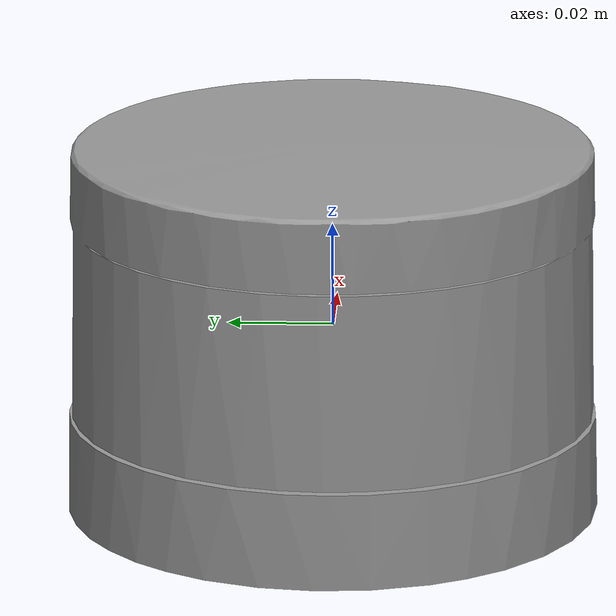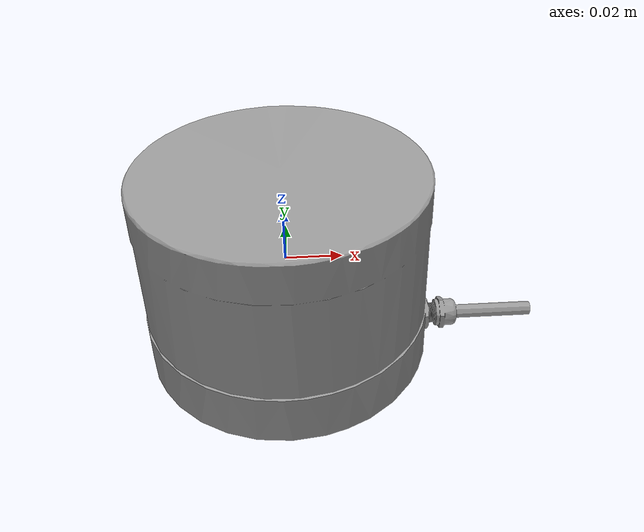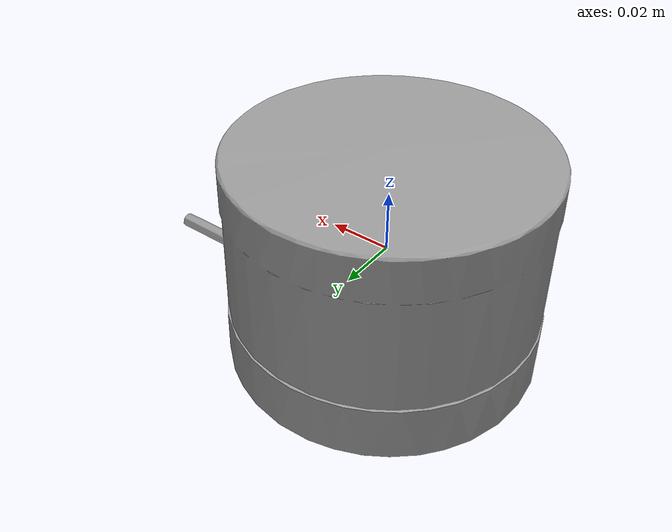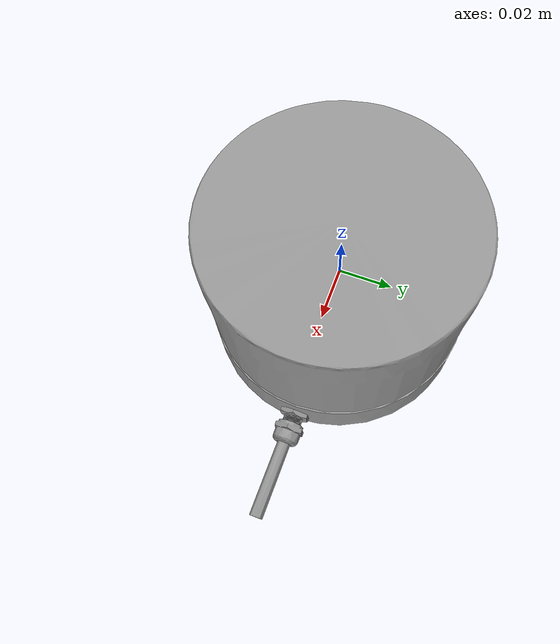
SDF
<?xml version='1.0'?>
<sdf version='1.6'>
<model name="velodyne_VLP-16">
  <static>0</static>
  <link name="VLP-16_link">
    <inertial>
      <mass>0.830</mass>
      <inertia>
        <ixx>0</ixx>
        <ixy>0</ixy>
        <ixz>0</ixz>
        <iyy>0</iyy>
        <iyz>0</iyz>
        <izz>0</izz>
      </inertia>
    </inertial>
    <self_collide>0</self_collide>
    <enable_wind>0</enable_wind>
    <kinematic>0</kinematic>

    <visual name="visual">
      <geometry>
        <mesh>
          <uri>model://velodynelidar_VLP_16_gpu/meshes/VLP-16.STL</uri>
        </mesh>
      </geometry>
      <material>
        <lighting>1</lighting>
        <ambient>0.3 0.3 0.3 1</ambient>
        <diffuse>0.6 0.6 0.6 1</diffuse>
        <specular>0.15 0.15 0.15 1</specular>
        <emissive>0 0 0 1</emissive>
      </material>
    </visual>

    <collision name="collision">
      <max_contacts>2</max_contacts>
      <geometry>
        <cylinder>
          <radius>0.05165</radius>
          <length>0.0717</length>
        </cylinder>
      </geometry>
    </collision>

    <sensor name="VLP-16_laser" type="gpu_ray">
      <pose>0 0 0 0 -0 0</pose>
      <ray>
        <scan>
          <horizontal>
            <samples>720</samples>
            <resolution>1</resolution>
            <min_angle>-3.14</min_angle>
            <max_angle>+3.14</max_angle>
          </horizontal>
          <vertical>
            <samples>16</samples>
            <min_angle>-0.17</min_angle>
            <max_angle>0.17</max_angle>
          </vertical>
        </scan>
        <range>
          <min>0.052</min>
          <max>100</max>
          <resolution>0.0025</resolution><!-- 0.1 deg -->
        </range>
      </ray>
      <always_on>true</always_on>
      <update_rate>5</update_rate>
      <visualize>true</visualize>

      <plugin name="LaserPlugin" filename="libLaserPlugin.so" >
        <ros2>
          <topic_name>scan</topic_name>
          <frame_id>base_scan</frame_id>
          <output_type>PointCloud2</output_type>
        </ros2>
        <intensity>false</intensity>
      </plugin>
    </sensor>
  </link>
</model>
</sdf>
